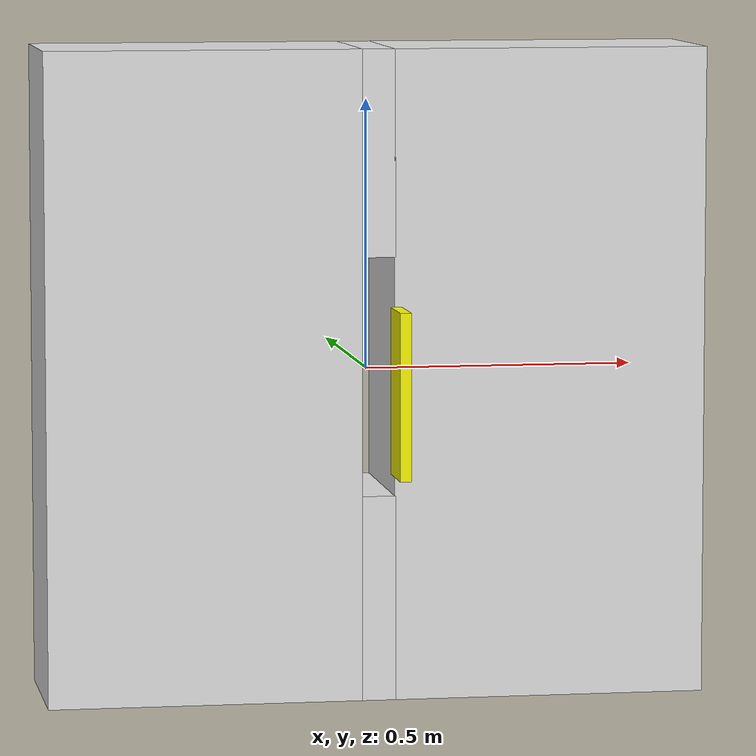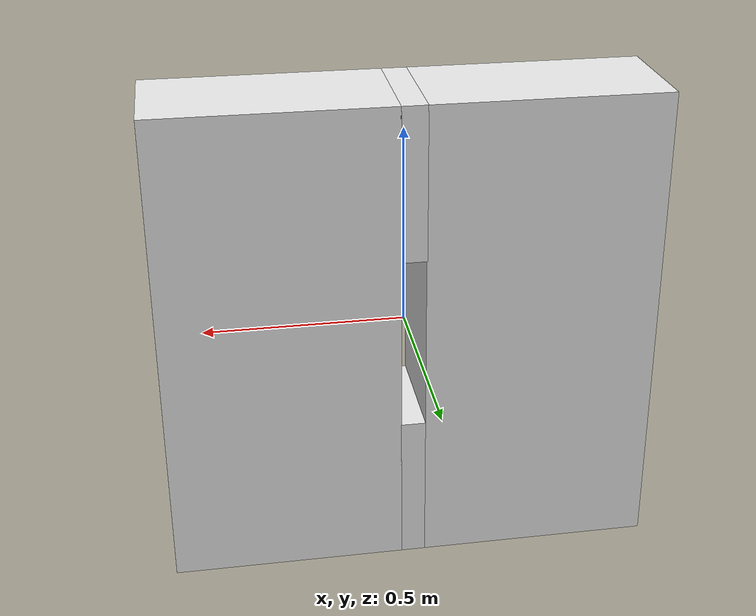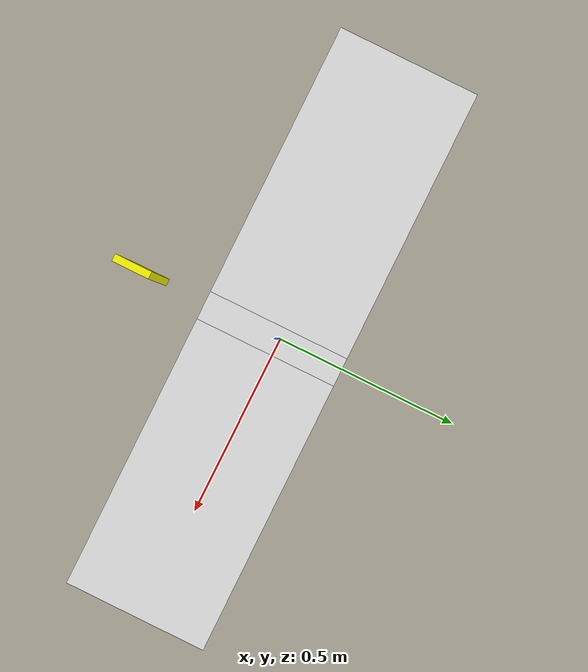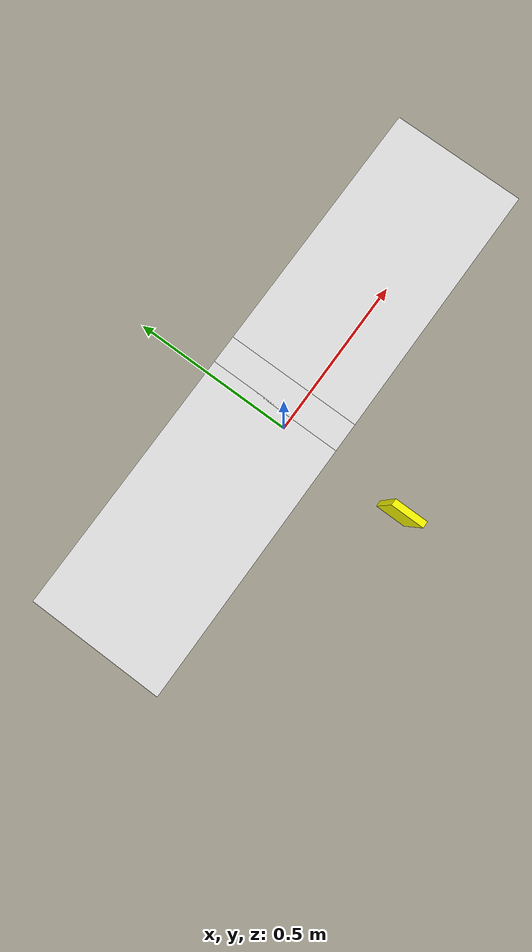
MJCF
<mujoco model="block_insertion">

    <compiler inertiafromgeom="true" angle="radian" coordinate="local" />
    <option timestep="0.01" gravity="0 0 0" iterations="20" integrator="Euler" />
    <default>
        <joint armature="0.1" damping="1" limited="false" />
        <geom friction=".5 .1 .1" margin="0" condim="3" contype="0" conaffinity="0" />
    </default>

    <worldbody>

        <body name="block" pos="0 -0.4 0">
            <geom name="block_geom" rgba="1 1 0 1" type="box" size="0.01 0.05 0.15" contype="1" conaffinity="1" />
            <joint name="block_x" type="slide" pos="0 0 0" axis="1 0 0" limited="true" range="-0.25 0.25" />
            <joint name="block_y" type="slide" pos="0 0 0" axis="0 1 0" limited="true" range="0 0.8" />
            <joint name="block_z" type="slide" pos="0 0 0" axis="0 0 1" limited="true" range="-0.25 0.25" />
        </body>

        <body name="block_target" pos="0 -0.4 0">
            <geom name="block_target_geom" rgba="0 1 0 1" type="box" size="0.01 0.05 0.15" contype="0" conaffinity="0" />
            <joint name="block_target_x" armature="0" damping="0" type="slide" pos="0 0 0" axis="1 0 0" limited="true" range="-0.25 0.25" />
            <joint name="block_target_y" armature="0" damping="0" type="slide" pos="0 0 0" axis="0 1 0" limited="true" range="0 0.8" />
            <joint name="block_target_z" armature="0" damping="0" type="slide" pos="0 0 0" axis="0 0 1" limited="true" range="-0.25 0.25" />
        </body>

        <body name="w1" pos="0.32 0 0">
            <geom name="w1" rgba="0.9 0.9 0.9 1" type="box" size="0.29 0.15 0.6" contype="1" conaffinity="1" />
        </body>

        <body name="w2" pos="-0.32 0 0">
            <geom name="w2" rgba="0.9 0.9 0.9 1" type="box" size="0.29 0.15 0.6" contype="1" conaffinity="1" />
        </body>

        <body name="w3" pos="0.0 0 0.41">
            <geom name="w3" rgba="0.9 0.9 0.9 1" type="box" size="0.032 0.15 0.19" contype="1" conaffinity="1" />
        </body>

        <body name="w4" pos="0.0 0 -0.41">
            <geom name="w4" rgba="0.9 0.9 0.9 1" type="box" size="0.032 0.15 0.19" contype="1" conaffinity="1" />
        </body>
    </worldbody>

    <actuator>
        <motor joint="block_x" ctrlrange="-2.0 2.0" ctrllimited="true" />
        <motor joint="block_y" ctrlrange="-2.0 2.0" ctrllimited="true" />
        <motor joint="block_z" ctrlrange="-2.0 2.0" ctrllimited="true" />
    </actuator>

</mujoco>
